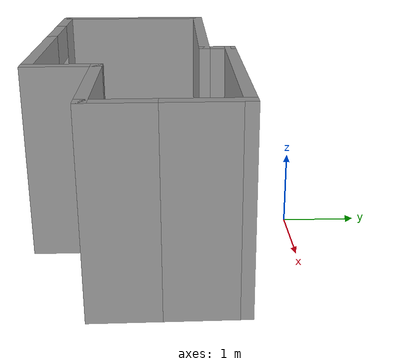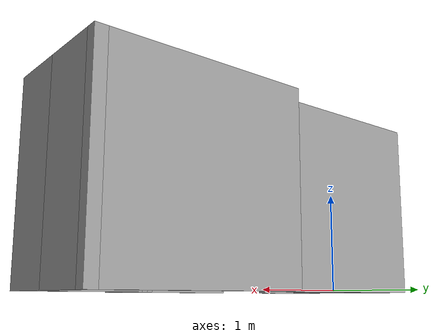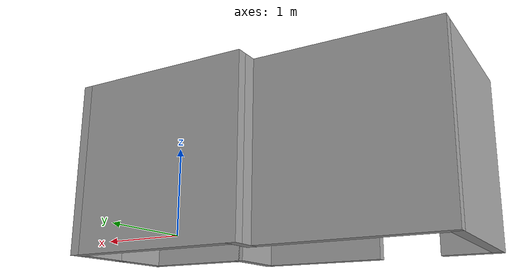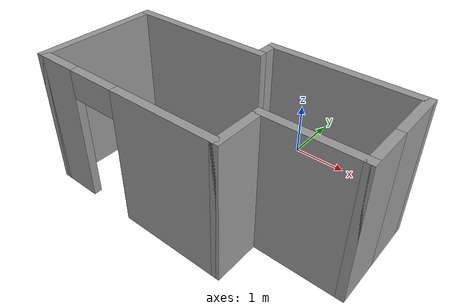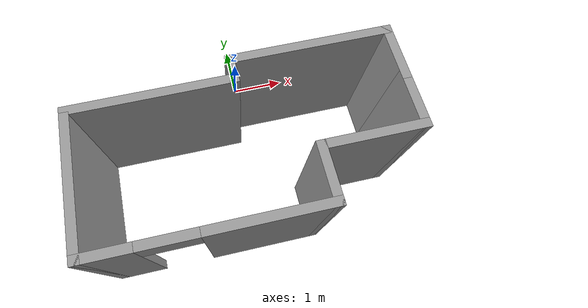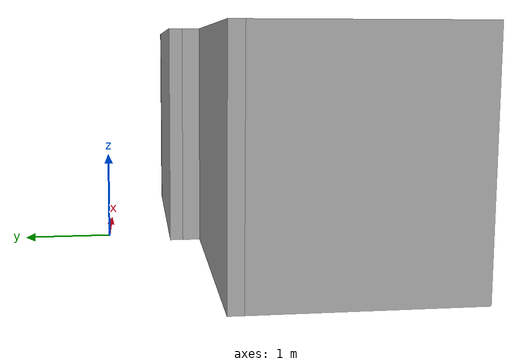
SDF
<?xml version='1.0'?>
<sdf version='1.6'>
  <model name='room'>
    <pose frame=''>-0.22 -2.075 0 0 -0 0</pose>
    <link name='Wall_0'>
      <collision name='Wall_0_Collision'>
        <geometry>
          <box>
            <size>2.25 0.15 2.5</size>
          </box>
        </geometry>
        <pose frame=''>0 0 1.25 0 -0 0</pose>
      </collision>
      <visual name='Wall_0_Visual'>
        <pose frame=''>0 0 1.25 0 -0 0</pose>
        <geometry>
          <box>
            <size>2.25 0.15 2.5</size>
          </box>
        </geometry>
        <material>
          <script>
            <uri>file://media/materials/scripts/gazebo.material</uri>
            <name>Gazebo/Grey</name>
          </script>
          <ambient>1 1 1 1</ambient>
        </material>
        <meta>
          <layer>0</layer>
        </meta>
      </visual>
      <pose frame=''>-2.6 -0.225 0 0 -0 -1.5708</pose>
    </link>
    <link name='Wall_1'>
      <pose frame=''>-0.8 -1.275 0 0 -0 0</pose>
      <visual name='Wall_1_Visual_0'>
        <pose frame=''>-1.4525 0 1.25 0 -0 0</pose>
        <geometry>
          <box>
            <size>0.845 0.15 2.5</size>
          </box>
        </geometry>
        <material>
          <script>
            <uri>file://media/materials/scripts/gazebo.material</uri>
            <name>Gazebo/Grey</name>
          </script>
          <ambient>1 1 1 1</ambient>
        </material>
        <meta>
          <layer>0</layer>
        </meta>
      </visual>
      <collision name='Wall_1_Collision_0'>
        <geometry>
          <box>
            <size>0.845 0.15 2.5</size>
          </box>
        </geometry>
        <pose frame=''>-1.4525 0 1.25 0 -0 0</pose>
      </collision>
      <visual name='Wall_1_Visual_1'>
        <pose frame=''>0.8725 0 1.25 0 -0 0</pose>
        <geometry>
          <box>
            <size>2.005 0.15 2.5</size>
          </box>
        </geometry>
        <material>
          <script>
            <uri>file://media/materials/scripts/gazebo.material</uri>
            <name>Gazebo/Grey</name>
          </script>
          <ambient>1 1 1 1</ambient>
        </material>
        <meta>
          <layer>0</layer>
        </meta>
      </visual>
      <collision name='Wall_1_Collision_1'>
        <geometry>
          <box>
            <size>2.005 0.15 2.5</size>
          </box>
        </geometry>
        <pose frame=''>0.8725 0 1.25 0 -0 0</pose>
      </collision>
      <visual name='Wall_1_Visual_2'>
        <pose frame=''>-0.58 0 2.25 0 -0 0</pose>
        <geometry>
          <box>
            <size>0.9 0.15 0.5</size>
          </box>
        </geometry>
        <material>
          <script>
            <uri>file://media/materials/scripts/gazebo.material</uri>
            <name>Gazebo/Grey</name>
          </script>
          <ambient>1 1 1 1</ambient>
        </material>
        <meta>
          <layer>0</layer>
        </meta>
      </visual>
      <collision name='Wall_1_Collision_2'>
        <geometry>
          <box>
            <size>0.9 0.15 0.5</size>
          </box>
        </geometry>
        <pose frame=''>-0.58 0 2.25 0 -0 0</pose>
      </collision>
    </link>
    <link name='Wall_2'>
      <collision name='Wall_2_Collision'>
        <geometry>
          <box>
            <size>1 0.15 2.5</size>
          </box>
        </geometry>
        <pose frame=''>0 0 1.25 0 -0 0</pose>
      </collision>
      <visual name='Wall_2_Visual'>
        <pose frame=''>0 0 1.25 0 -0 0</pose>
        <geometry>
          <box>
            <size>1 0.15 2.5</size>
          </box>
        </geometry>
        <material>
          <script>
            <uri>file://media/materials/scripts/gazebo.material</uri>
            <name>Gazebo/Grey</name>
          </script>
          <ambient>1 1 1 1</ambient>
        </material>
        <meta>
          <layer>0</layer>
        </meta>
      </visual>
      <pose frame=''>1 -0.85 0 0 -0 1.5708</pose>
    </link>
    <link name='Wall_3'>
      <collision name='Wall_3_Collision'>
        <geometry>
          <box>
            <size>1.75 0.15 2.5</size>
          </box>
        </geometry>
        <pose frame=''>0 0 1.25 0 -0 0</pose>
      </collision>
      <visual name='Wall_3_Visual'>
        <pose frame=''>0 0 1.25 0 -0 0</pose>
        <geometry>
          <box>
            <size>1.75 0.15 2.5</size>
          </box>
        </geometry>
        <material>
          <script>
            <uri>file://media/materials/scripts/gazebo.material</uri>
            <name>Gazebo/Grey</name>
          </script>
          <ambient>1 1 1 1</ambient>
        </material>
        <meta>
          <layer>0</layer>
        </meta>
      </visual>
      <pose frame=''>1.8 -0.425 0 0 -0 0</pose>
    </link>
    <link name='Wall_4'>
      <collision name='Wall_4_Collision'>
        <geometry>
          <box>
            <size>1 0.15 2.5</size>
          </box>
        </geometry>
        <pose frame=''>0 0 1.25 0 -0 0</pose>
      </collision>
      <visual name='Wall_4_Visual'>
        <pose frame=''>0 0 1.25 0 -0 0</pose>
        <geometry>
          <box>
            <size>1 0.15 2.5</size>
          </box>
        </geometry>
        <material>
          <script>
            <uri>file://media/materials/scripts/gazebo.material</uri>
            <name>Gazebo/Grey</name>
          </script>
          <ambient>1 1 1 1</ambient>
        </material>
        <meta>
          <layer>0</layer>
        </meta>
      </visual>
      <pose frame=''>2.6 0 0 0 -0 1.5708</pose>
    </link>
    <link name='Wall_5'>
      <collision name='Wall_5_Collision'>
        <geometry>
          <box>
            <size>1 0.15 2.5</size>
          </box>
        </geometry>
        <pose frame=''>0 0 1.25 0 -0 0</pose>
      </collision>
      <visual name='Wall_5_Visual'>
        <pose frame=''>0 0 1.25 0 -0 0</pose>
        <geometry>
          <box>
            <size>1 0.15 2.5</size>
          </box>
        </geometry>
        <material>
          <script>
            <uri>file://media/materials/scripts/gazebo.material</uri>
            <name>Gazebo/Grey</name>
          </script>
          <ambient>1 1 1 1</ambient>
        </material>
        <meta>
          <layer>0</layer>
        </meta>
      </visual>
      <pose frame=''>2.6 0.85 0 0 -0 1.5708</pose>
    </link>
    <link name='Wall_6'>
      <collision name='Wall_6_Collision'>
        <geometry>
          <box>
            <size>2.75 0.15 2.5</size>
          </box>
        </geometry>
        <pose frame=''>0 0 1.25 0 -0 0</pose>
      </collision>
      <visual name='Wall_6_Visual'>
        <pose frame=''>0 0 1.25 0 -0 0</pose>
        <geometry>
          <box>
            <size>2.75 0.15 2.5</size>
          </box>
        </geometry>
        <material>
          <script>
            <uri>file://media/materials/scripts/gazebo.material</uri>
            <name>Gazebo/Grey</name>
          </script>
          <ambient>1 1 1 1</ambient>
        </material>
        <meta>
          <layer>0</layer>
        </meta>
      </visual>
      <pose frame=''>1.3 1.275 0 0 -0 3.14159</pose>
    </link>
    <link name='Wall_7'>
      <collision name='Wall_7_Collision'>
        <geometry>
          <box>
            <size>0.5 0.15 2.5</size>
          </box>
        </geometry>
        <pose frame=''>0 0 1.25 0 -0 0</pose>
      </collision>
      <visual name='Wall_7_Visual'>
        <pose frame=''>0 0 1.25 0 -0 0</pose>
        <geometry>
          <box>
            <size>0.5 0.15 2.5</size>
          </box>
        </geometry>
        <material>
          <script>
            <uri>file://media/materials/scripts/gazebo.material</uri>
            <name>Gazebo/Grey</name>
          </script>
          <ambient>1 1 1 1</ambient>
        </material>
        <meta>
          <layer>0</layer>
        </meta>
      </visual>
      <pose frame=''>-0 1.1 0 0 -0 -1.5708</pose>
    </link>
    <link name='Wall_8'>
      <collision name='Wall_8_Collision'>
        <geometry>
          <box>
            <size>2.75 0.15 2.5</size>
          </box>
        </geometry>
        <pose frame=''>0 0 1.25 0 -0 0</pose>
      </collision>
      <visual name='Wall_8_Visual'>
        <pose frame=''>0 0 1.25 0 -0 0</pose>
        <geometry>
          <box>
            <size>2.75 0.15 2.5</size>
          </box>
        </geometry>
        <material>
          <script>
            <uri>file://media/materials/scripts/gazebo.material</uri>
            <name>Gazebo/Grey</name>
          </script>
          <ambient>1 1 1 1</ambient>
        </material>
        <meta>
          <layer>0</layer>
        </meta>
      </visual>
      <pose frame=''>-1.3 0.925 0 0 -0 3.14159</pose>
    </link>
    <static>1</static>
  </model>
</sdf>
